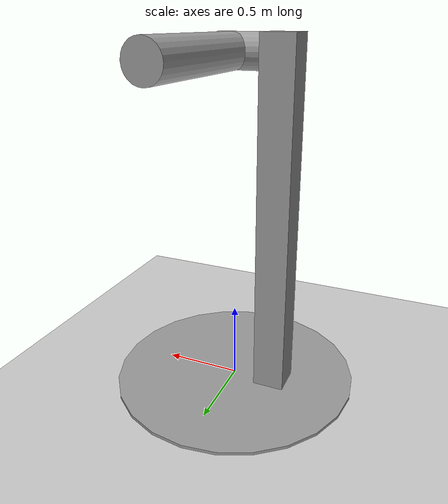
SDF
<?xml version="1.0"?>
<!--
  Gazebo HRIM ft sensor plugin demo
-->
<sdf version="1.6">
  <world name="default">
    <include>
      <uri>model://ground_plane</uri>
    </include>
    <include>
      <uri>model://sun</uri>
    </include>
    <model name="pendulum_with_base">
      <link name="base">
        <inertial>
          <mass>100</mass>
        </inertial>
        <visual name="vis_plate_on_ground">
          <pose>0 0 0.01 0 0 0</pose>
          <geometry>
            <cylinder>
              <radius>0.8</radius>
              <length>0.02</length>
            </cylinder>
          </geometry>
          <material>
            <script>
              <uri>file://media/materials/scripts/gazebo.material</uri>
              <name>Gazebo/Grey</name>
            </script>
          </material>
        </visual>
        <visual name="vis_pole">
          <pose>-0.275 0 1.1 0 0 0</pose>
          <geometry>
            <box>
              <size>0.2 0.2 2.2</size>
            </box>
          </geometry>
          <material>
            <script>
              <uri>file://media/materials/scripts/gazebo.material</uri>
              <name>Gazebo/Grey</name>
            </script>
          </material>
        </visual>
        <collision name="col_plate_on_ground">
          <pose>0 0 0.01 0 0 0</pose>
          <geometry>
            <cylinder>
              <radius>0.8</radius>
              <length>0.02</length>
            </cylinder>
          </geometry>
        </collision>
        <collision name="col_pole">
          <pose>-0.275 0 1.1 0 0 0</pose>
          <geometry>
            <box>
              <size>0.2 0.2 2.2</size>
            </box>
          </geometry>
        </collision>
      </link>
      <!-- pendulum, length 1, IC -90 degrees -->
      <link name="pendulum">
        <pose>0 0 2.1 -1.5708 0 0</pose>
        <self_collide>0</self_collide>
        <inertial>
          <pose>0 0 0.5 0 0 0</pose>
        </inertial>
        <visual name="vis_upper_joint">
          <pose>-0.05 0 0 0 1.5708 0</pose>
          <geometry>
            <cylinder>
              <radius>0.1</radius>
              <length>0.3</length>
            </cylinder>
          </geometry>
          <material>
            <script>
              <uri>file://media/materials/scripts/gazebo.material</uri>
              <name>Gazebo/Grey</name>
            </script>
          </material>
        </visual>
        <visual name="vis_cylinder">
          <pose>0 0 0.5 0 0 0</pose>
          <geometry>
            <cylinder>
              <radius>0.1</radius>
              <length>0.9</length>
            </cylinder>
          </geometry>
          <material>
            <script>
              <uri>file://media/materials/scripts/gazebo.material</uri>
              <name>Gazebo/Grey</name>
            </script>
          </material>
        </visual>
        <collision name="col_upper_joint">
          <pose>-0.05 0 0 0 1.5708 0</pose>
          <geometry>
            <cylinder>
              <radius>0.1</radius>
              <length>0.3</length>
            </cylinder>
          </geometry>
        </collision>
        <collision name="col_cylinder">
          <pose>0 0 0.5 0 0 0</pose>
          <geometry>
            <cylinder>
              <radius>0.1</radius>
              <length>0.9</length>
            </cylinder>
          </geometry>
        </collision>
      </link>
      <!-- pin joint for upper link, at origin of upper link -->
      <joint name="pendulum" type="revolute">
        <parent>base</parent>
        <child>pendulum</child>
        <physics>
          <provide_feedback>true</provide_feedback>
        </physics>
        <axis>
          <xyz>1.0 0 0</xyz>
        </axis>
      </joint>
      <plugin name="my_ft"
        filename="libgazebo_hrim_ft_sensor.so">
        <ros>
          <namespace>/demo</namespace>
          <argument>~/out:=reading</argument>
        </ros>
        <update_rate>100</update_rate>
        <joint_name>pendulum</joint_name>
      </plugin>
    </model>
  </world>
</sdf>
